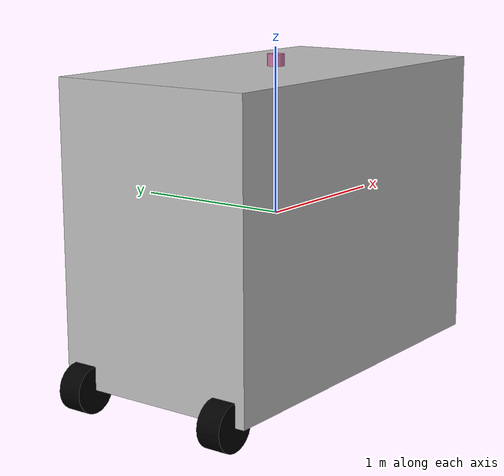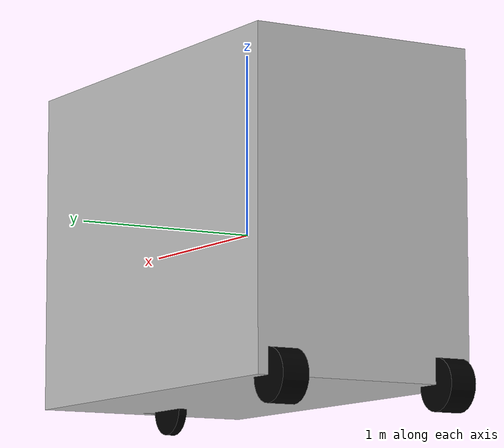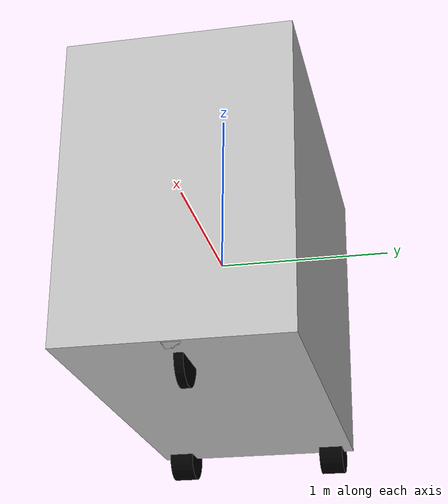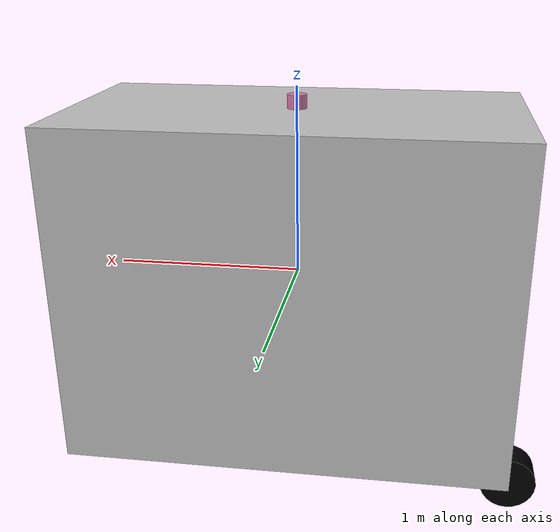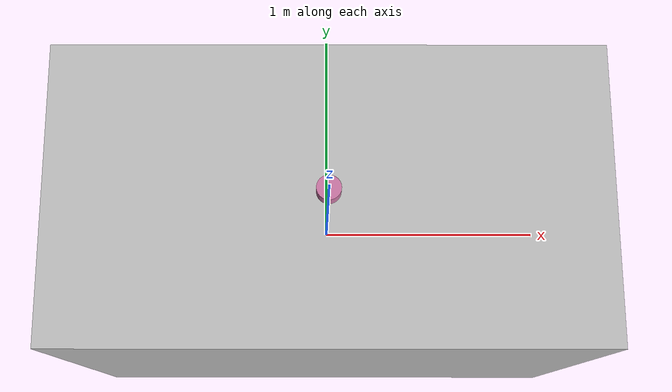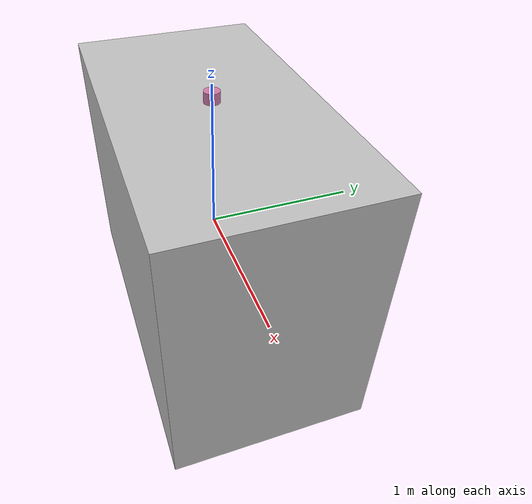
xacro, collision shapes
<?xml version="1.0"?>
<robot xmlns:xacro="http://www.ros.org/wiki/xacro" name="tortoisebot">
  <link name="base_link">
    <visual>
      <geometry>
        <box size="2.337 1.27 1.778"/>
      </geometry>
      <material name="silver">
        <color rgba="0.75 0.75 0.75 1"/>
      </material>
    </visual>
    <collision>
      <geometry>
        <box size="2.337 1.27 1.778"/>
      </geometry>
    </collision>
    <inertial>
      <origin xyz="0 0 -1.6" rpy="0 0 0"/>
      <mass value="1.0"/>
      <inertia ixx="0.136" iyy="0.456" izz="0.587"
               ixy="0" ixz="0" iyz="0"/>
    </inertial>
  </link>

  <joint name="front_caster_joint" type="continuous">
    <axis xyz="0 0 1"/>
    <parent link="base_link"/>
    <child link="front_caster"/>
    <origin rpy="0 0 0" xyz="1.1 0 -0.739"/>
  </joint>

  <link name="front_caster">
    <visual>
      <geometry>
        <box size="0.1 0.1 0.3"/>
      </geometry>
      <material name="silver"/>
    </visual>
    <collision>
      <geometry>
        <box size="0.1 0.1 0.3"/>
      </geometry>
    </collision>
    <inertial>
      <mass value="0.1"/>
      <inertia ixx="0.00083" iyy="0.00083" izz="0.000167"
               ixy="0" ixz="0" iyz="0"/>
    </inertial>
  </link>

  <joint name="caster_to_caster_rod" type="fixed">
    <parent link="front_caster"/>
    <child link="front_caster_rod"/>
    <origin xyz="-.3 0 0"/>
  </joint>

  <link name="front_caster_rod">
    <visual>
      <geometry>
        <box size="0.3 0.1 0.1"/>
      </geometry>
      <material name="silver"/>
    </visual>
    <inertial>
      <mass value="0.1"/>
      <inertia ixx="0.000167" iyy="0.00083" izz="0.00083"
               ixy="0" ixz="0" iyz="0"/>
    </inertial>
  </link>

  <joint name="front_wheel_joint" type="continuous">
    <axis xyz="0 0 1"/>
    <parent link="front_caster_rod"/>
    <child link="front_wheel"/>
    <origin rpy="-1.5708 0 0" xyz="0.05 0 -.15"/>
  </joint>

  <link name="front_wheel">
    <visual>
      <geometry>
        <cylinder length=".05" radius="0.14"/>
      </geometry>
      <material name="black"/>
    </visual>
    <collision>
      <geometry>
        <cylinder length=".05" radius="0.14"/>
      </geometry>
      <surface>
        <friction>
          <ode>
            <mu>0.1</mu>
            <mu2>0.1</mu2>
          </ode>
        </friction>
      </surface>
    </collision>
    <inertial>
      <mass value="0.1"/>
      <inertia ixx="5.1458e-5" iyy="5.1458e-5" izz="6.125e-5"
               ixy="0" ixz="0" iyz="0"/>
    </inertial>
  </link>

  <link name="right_wheel">
    <visual>
      <geometry>
        <cylinder length="0.15" radius="0.14"/>
      </geometry>
      <material name="black">
        <color rgba="0 0 0 1"/>
      </material>
    </visual>
    <collision>
      <geometry>
        <cylinder length="0.15" radius="0.14"/>
      </geometry>
        <friction>
          <ode>
            <mu>1.00</mu>
            <mu2>1.00</mu2>
          </ode>
        </friction>
    </collision>
    <inertial>
      <mass value="0.1"/>
      <inertia ixx="5.1458e-5" iyy="5.1458e-5" izz="6.125e-5"
               ixy="0" ixz="0" iyz="0"/>
    </inertial>
  </link>
  <joint name="right_wheel_joint" type="continuous">
    <axis xyz="0 0 1"/>
    <parent link="base_link"/>
    <child link="right_wheel"/>
    <origin rpy="-1.5708 0 0" xyz="-1.1685 -0.5 -0.889"/>
  </joint>

  <link name="left_wheel">
    <visual>
      <geometry>
        <cylinder length="0.15" radius="0.14"/>
      </geometry>
      <material name="black"/>
    </visual>
    <collision>
      <geometry>
        <cylinder length="0.15" radius="0.14"/>
      </geometry>
        <friction>
          <ode>
            <mu>1.00</mu>
            <mu2>1.00</mu2>
          </ode>
        </friction>
    </collision>
    <inertial>
      <mass value="0.1"/>
      <inertia ixx="5.1458e-5" iyy="5.1458e-5" izz="6.125e-5"
               ixy="0" ixz="0" iyz="0"/>
    </inertial>
  </link>
  <joint name="left_wheel_joint" type="continuous">
    <axis xyz="0 0 1"/>
    <parent link="base_link"/>
    <child link="left_wheel"/>
    <origin rpy="-1.5708 0 0" xyz="-1.1685 0.5 -0.889"/>
  </joint>

  <xacro:include filename="$(find velodyne_description)/urdf/VLP-16.urdf.xacro"/>
  <VLP-16 parent="base_link" name="velodyne" topic="/velodyne_points" hz="10" samples="440">
    <origin xyz="0 0 0.889" rpy="0 0 0" />
  </VLP-16>

  <gazebo>
    <plugin name="differential_drive_controller"
            filename="libgazebo_ros_diff_drive.so">
      <leftJoint>left_wheel_joint</leftJoint>
      <rightJoint>right_wheel_joint</rightJoint>
      <robotBaseFrame>base_link</robotBaseFrame>
      <wheelSeparation>1.0</wheelSeparation>
      <wheelDiameter>0.28</wheelDiameter>
       <wheelTorque>1.0</wheelTorque>
       <publishWheelJointState>true</publishWheelJointState>
       <legacyMode>false</legacyMode>
    </plugin>
  </gazebo>

  <gazebo>
    <plugin name="joint_state_publisher"
            filename="libgazebo_ros_joint_state_publisher.so">
      <jointName>front_caster_joint, front_wheel_joint</jointName>
    </plugin>
  </gazebo>

</robot>

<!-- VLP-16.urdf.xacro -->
<robot xmlns:xacro="http://www.ros.org/wiki/xacro" name="VLP-16">
  <xacro:property name="M_PI" value="3.1415926535897931" />
  <xacro:macro name="VLP-16" params="*origin is_sim:=true parent:=base_link name:=velodyne tf_prefix:='' topic:=/velodyne_points organize_cloud:=false hz:=10 lasers:=16 samples:=1875 collision_range:=0.3 min_range:=0.0 max_range:=100.0 noise:=0.008 min_angle:=-${M_PI} max_angle:=${M_PI} gpu:=false">

    <joint name="${name}_base_mount_joint" type="fixed">
      <xacro:insert_block name="origin" />
      <parent link="${parent}"/>
      <child link="${name}_base_link"/>
    </joint>

    <link name="${name}_base_link">
      <inertial>
        <mass value="0.83"/>
        <origin xyz="0 0 0.03585"/>
        <inertia ixx="${(0.83 * (3.0*0.0516*0.0516 + 0.0717*0.0717)) / 12.0}" ixy="0" ixz="0"
          iyy="${(0.83 * (3.0*0.0516*0.0516 + 0.0717*0.0717)) / 12.0}" iyz="0"
          izz="${0.5 * 0.83 * (0.0516*0.0516)}"/>
      </inertial>
      <visual>
        <geometry>
          <mesh filename="package://velodyne_description/meshes/VLP16_base_1.dae" />
        </geometry>
      </visual>
      <visual>
        <geometry>
          <mesh filename="package://velodyne_description/meshes/VLP16_base_2.dae" />
        </geometry>
      </visual>
      <collision>
        <origin rpy="0 0 0" xyz="0 0 0.03585"/>
        <geometry>
          <cylinder radius="0.0516" length="0.0717"/>
        </geometry>
      </collision>
    </link>

    <joint name="${name}_base_scan_joint" type="fixed" >
      <origin xyz="0 0 0.0377" rpy="0 0 0" />
      <parent link="${name}_base_link" />
      <child link="${name}"/>
    </joint>

    <link name="${name}">
      <inertial>
        <mass value="0.01"/>
        <origin xyz="0 0 0"/>
        <inertia ixx="1e-7" ixy="0" ixz="0" iyy="1e-7" iyz="0" izz="1e-7"/>
      </inertial>
      <visual>
        <origin xyz="0 0 -0.0377" />
        <geometry>
          <mesh filename="package://velodyne_description/meshes/VLP16_scan.dae" />
        </geometry>
      </visual>
      <collision>
        <geometry>
          <sphere radius="0"/>
        </geometry>
      </collision>
    </link>

    <!-- Gazebo requires the velodyne_gazebo_plugins package -->
    <xacro:if value="${is_sim}">
        <gazebo reference="${name}">
            <xacro:if value="${gpu}">
                <sensor type="gpu_ray" name="${name}-VLP16">
                <pose>0 0 0 0 0 0</pose>
                <visualize>false</visualize>
                <update_rate>${hz}</update_rate>
                <ray>
                    <scan>
                    <horizontal>
                        <samples>${samples}</samples>
                        <resolution>1</resolution>
                        <min_angle>${min_angle}</min_angle>
                        <max_angle>${max_angle}</max_angle>
                    </horizontal>
                    <vertical>
                        <samples>${lasers}</samples>
                        <resolution>1</resolution>
                        <min_angle>-${15.0*M_PI/180.0}</min_angle>
                        <max_angle> ${15.0*M_PI/180.0}</max_angle>
                    </vertical>
                    </scan>
                    <range>
                    <min>${collision_range}</min>
                    <max>${max_range+1}</max>
                    <resolution>0.001</resolution>
                    </range>
                    <noise>
                    <type>gaussian</type>
                    <mean>0.0</mean>
                    <stddev>0.0</stddev>
                    </noise>
                </ray>
                <plugin name="gazebo_ros_laser_controller" filename="libgazebo_ros_velodyne_laser.so">
                    <ros>
                    <namespace>/${name}</namespace>
                    <remapping>~/out:=${topic}</remapping>
                    </ros>
                    <tf_prefix>${tf_prefix}</tf_prefix>
                    <frame_name>${name}</frame_name>
                    <organize_cloud>${organize_cloud}</organize_cloud>
                    <min_range>${min_range}</min_range>
                    <max_range>${max_range}</max_range>
                    <gaussian_noise>${noise}</gaussian_noise>
                </plugin>
                </sensor>
            </xacro:if>
            <xacro:unless value="${gpu}">
                <sensor type="ray" name="${name}-VLP16">
                <pose>0 0 0 0 0 0</pose>
                <visualize>false</visualize>
                <update_rate>${hz}</update_rate>
                <ray>
                    <scan>
                    <horizontal>
                        <samples>${samples}</samples>
                        <resolution>1</resolution>
                        <min_angle>${min_angle}</min_angle>
                        <max_angle>${max_angle}</max_angle>
                    </horizontal>
                    <vertical>
                        <samples>${lasers}</samples>
                        <resolution>1</resolution>
                        <min_angle>-${15.0*M_PI/180.0}</min_angle>
                        <max_angle> ${15.0*M_PI/180.0}</max_angle>
                    </vertical>
                    </scan>
                    <range>
                    <min>${collision_range}</min>
                    <max>${max_range+1}</max>
                    <resolution>0.001</resolution>
                    </range>
                    <noise>
                    <type>gaussian</type>
                    <mean>0.0</mean>
                    <stddev>0.0</stddev>
                    </noise>
                </ray>
                <plugin name="gazebo_ros_laser_controller" filename="libgazebo_ros_velodyne_laser.so">
                    <ros>
                    <namespace>/${name}</namespace>
                    <remapping>~/out:=${topic}</remapping>
                    </ros>
                    <tf_prefix>${tf_prefix}</tf_prefix>
                    <frame_name>${name}</frame_name>
                    <organize_cloud>${organize_cloud}</organize_cloud>
                    <min_range>${min_range}</min_range>
                    <max_range>${max_range}</max_range>
                    <gaussian_noise>${noise}</gaussian_noise>
                </plugin>
                </sensor>
            </xacro:unless>
        </gazebo>
    </xacro:if>

  </xacro:macro>
</robot>
